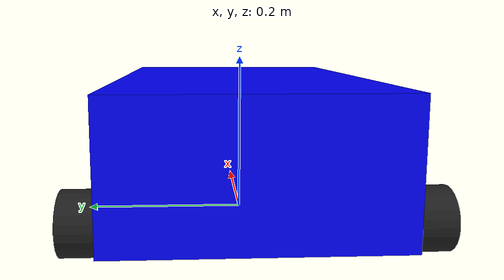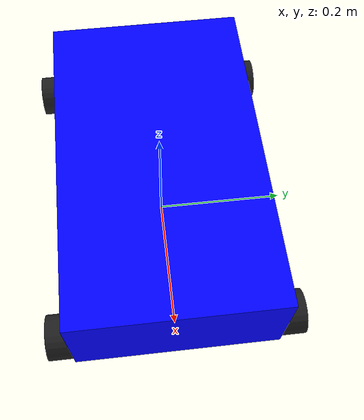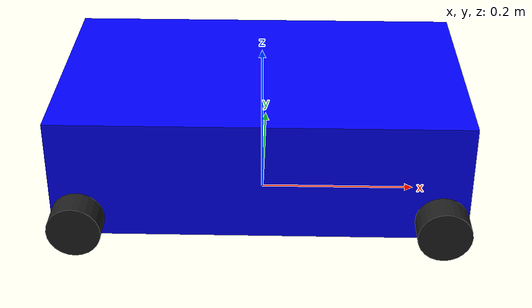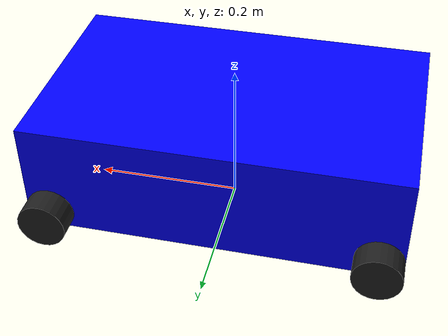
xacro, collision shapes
<?xml version="1.0"?>
<robot name="my_mecanum_bot" xmlns:xacro="http://www.ros.org/wiki/xacro">

    <xacro:include filename="bot_core.xacro" />
    <xacro:include filename="wheel.xacro" />
    <xacro:include filename="gazebo_controller.xacro" />

    <xacro:mecanum_wheel
        prefix="front_left"
        x_reflect="1"  y_reflect="1"
        mesh_file="front_left_wheel_X3.STL"
        fdir="1 -1 0"/>

    <xacro:mecanum_wheel
        prefix="front_right"
        x_reflect="1"  y_reflect="-1"
        mesh_file="front_left_wheel_X3.STL"
        fdir="1 1 0"/>

    <xacro:mecanum_wheel
        prefix="back_left"
        x_reflect="-1" y_reflect="1"
        mesh_file="back_left_wheel_X3.STL"
        fdir="1 1 0"/>

    <xacro:mecanum_wheel
        prefix="back_right"
        x_reflect="-1" y_reflect="-1"
        mesh_file="back_left_wheel_X3.STL"
        fdir="1 -1 0"/>

</robot>

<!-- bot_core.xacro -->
<robot xmlns:xacro="http://www.ros.org/wiki/xacro">

    <xacro:macro name="inertial_box" params="mass x y z *origin">
        <inertial>
            <xacro:insert_block name="origin"/>
            <mass value="${mass}" />
            <inertia ixx="${(1/12) * mass * (y*y+z*z)}" ixy="0.0" ixz="0.0"
                    iyy="${(1/12) * mass * (x*x+z*z)}" iyz="0.0"
                    izz="${(1/12) * mass * (x*x+y*y)}" />
        </inertial>
    </xacro:macro>

    <xacro:macro name="inertial_cylinder" params="mass length radius *origin">
        <inertial>
            <xacro:insert_block name="origin"/>
            <mass value="${mass}" />
            <inertia ixx="${(1/12) * mass * (3*radius*radius + length*length)}" ixy="0.0" ixz="0.0"
                    iyy="${(1/12) * mass * (3*radius*radius + length*length)}" iyz="0.0"
                    izz="${(1/2) * mass * (radius*radius)}" />
        </inertial>
    </xacro:macro>

    <xacro:property name="chassis_length" value="0.5"/>
    <xacro:property name="chassis_width" value="0.3"/>
    <xacro:property name="chassis_height" value="0.15"/>

    <link name="base_link"></link>

    <joint name="chassis_joint" type="fixed">
        <parent link="base_link"/>
        <child link="chassis"/>
        <origin xyz="0 0 0.1"/>
    </joint>

    <link name="chassis">
        <visual>
            <geometry>
                <box size="${chassis_length} ${chassis_width} ${chassis_height}"/>
            </geometry>
            <material name="blue"><color rgba="0 0 1 1"/></material>
        </visual>
        <collision>
            <geometry>
                <box size="${chassis_length} ${chassis_width} ${chassis_height}"/>
            </geometry>
        </collision>
        <xacro:inertial_box mass="2.0" x="${chassis_length}" y="${chassis_width}" z="${chassis_height}">
            <origin xyz="0 0 0" rpy="0 0 0"/>
        </xacro:inertial_box>
    </link>
</robot>

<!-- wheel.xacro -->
<!--
    xmlns:ignition declared here so xacro passes ignition:expressed_in
    through to the SDF parser without stripping it.
-->
<robot xmlns:xacro="http://www.ros.org/wiki/xacro"
       xmlns:ignition="https://ignitionrobotics.org">

    <xacro:property name="wheel_radius"    value="0.0323"/>
    <xacro:property name="wheel_thickness" value="0.0352"/>
    <xacro:property name="mesh_z_offset"   value="0.0024"/>
    <xacro:property name="mesh_pkg" value="file://$(find bot)/meshes"/>

    <xacro:macro name="mecanum_wheel" params="prefix x_reflect y_reflect mesh_file fdir">

        <joint name="${prefix}_joint" type="continuous">
            <parent link="chassis"/>
            <child  link="${prefix}_wheel"/>
            <origin
                xyz="${x_reflect * (chassis_length/2 - wheel_radius)}
                     ${y_reflect * (chassis_width/2  + wheel_thickness/2)}
                     -0.05"
                rpy="${pi/2} 0 0"/>
            <axis xyz="0 0 -1"/>
        </joint>

        <link name="${prefix}_wheel">

            <visual>
                <origin xyz="0 0 ${-mesh_z_offset}" rpy="0 0 0"/>
                <geometry>
                    <mesh filename="${mesh_pkg}/${mesh_file}"
                          scale="1 ${y_reflect} 1"/>
                </geometry>
            </visual>

            <!-- Cylinder collision: stable under DART, correct size from mesh -->
            <collision>
                <geometry>
                    <cylinder radius="${wheel_radius}" length="${wheel_thickness}"/>
                </geometry>
            </collision>

            <xacro:inertial_cylinder mass="0.2"
                length="${wheel_thickness}" radius="${wheel_radius}">
                <origin xyz="0 0 0" rpy="0 0 0"/>
            </xacro:inertial_cylinder>

        </link>

        <!-- ── Physics-accurate anisotropic friction surface ─────────────── -->
        <gazebo reference="${prefix}_wheel">
            <collision>
                <surface>
                    <friction>
                        <ode>
                            <mu>1.0</mu>
                            <mu2>0.0</mu2>
                            <fdir1 ignition:expressed_in="chassis">${fdir}</fdir1>
                            <slip1>0.01</slip1>
                            <slip2>0.01</slip2>
                        </ode>
                    </friction>
                    <contact>
                        <ode>
                            <kp>1000000.0</kp>
                            <kd>100.0</kd>
                            <max_vel>1.0</max_vel>
                            <min_depth>0.001</min_depth>
                        </ode>
                    </contact>
                </surface>
            </collision>
            <material>Gazebo/Black</material>
        </gazebo>
    </xacro:macro>
</robot>
